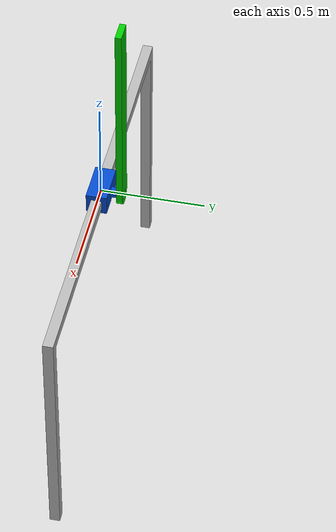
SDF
<?xml version="1.0" ?>
<sdf version='1.7'>
  <model name='cart_pole'>
    <link name='base_footprint'>
      <inertial>
        <pose>0 0 -0.333 0 -0 0</pose>
        <mass>88</mass>
        <inertia>
          <ixx>14.25</ixx>
          <ixy>0</ixy>
          <ixz>0.0245</ixz>
          <iyy>78.78</iyy>
          <iyz>0</iyz>
          <izz>64.57</izz>
        </inertia>
      </inertial>
      <collision name='base_footprint_fixed_joint_lump__base_link_collision'>
        <pose>0 0 0 0 -0 0</pose>
        <geometry>
          <mesh>
            <scale>1 1 1</scale>
            <uri>model://robot_description/meshes/STL/base/stand.stl</uri>
          </mesh>
        </geometry>
        <surface>
          <contact>
            <ode/>
          </contact>
          <friction>
            <ode>
              <mu>0.05</mu>
              <mu2>0.05</mu2>
            </ode>
          </friction>
        </surface>
      </collision>
      <visual name='base_footprint_fixed_joint_lump__base_link_visual'>
        <pose>0 0 0 0 -0 0</pose>
        <geometry>
          <mesh>
            <scale>1 1 1</scale>
            <uri>model://robot_description/meshes/DAE/base/stand.dae</uri>
          </mesh>
        </geometry>
      </visual>
      <self_collide>0</self_collide>
    </link>
    <joint name='cart_joint' type='prismatic'>
      <pose relative_to='base_footprint'>0 0 0 0 -0 0</pose>
      <parent>base_footprint</parent>
      <child>cart_link</child>
      <axis>
        <xyz>1 0 0</xyz>
        <limit>
          <lower>-1</lower>
          <upper>1</upper>
          <effort>30</effort>
          <velocity>10</velocity>
        </limit>
        <dynamics>
          <damping>0.005</damping>
          <friction>0.1</friction>
          <spring_reference>0</spring_reference>
          <spring_stiffness>0</spring_stiffness>
        </dynamics>
      </axis>
    </joint>
    <link name='cart_link'>
      <pose relative_to='cart_joint'>0 0 0 0 -0 0</pose>
      <inertial>
        <pose>0 0 0 0 -0 0</pose>
        <mass>2.7</mass>
        <inertia>
          <ixx>0.005878</ixx>
          <ixy>0</ixy>
          <ixz>0</ixz>
          <iyy>0.01145</iyy>
          <iyz>0</iyz>
          <izz>0.01186</izz>
        </inertia>
      </inertial>
      <collision name='cart_link_collision'>
        <pose>0 0 0 0 -0 0</pose>
        <geometry>
          <mesh>
            <scale>1 1 1</scale>
            <uri>model://robot_description/meshes/STL/cart/cart.stl</uri>
          </mesh>
        </geometry>
        <surface>
          <contact>
            <ode/>
          </contact>
          <friction>
            <ode>
              <mu>1.2</mu>
              <mu2>1.2</mu2>
            </ode>
          </friction>
        </surface>
      </collision>
      <visual name='cart_link_visual'>
        <pose>0 0 0 0 -0 0</pose>
        <geometry>
          <mesh>
            <scale>1 1 1</scale>
            <uri>model://robot_description/meshes/DAE/cart/cart.dae</uri>
          </mesh>
        </geometry>
      </visual>
      <self_collide>0</self_collide>
    </link>
    <joint name='pole_joint' type='revolute'>
      <pose relative_to='cart_link'>0 0.1 0 3.14159 -0 3.14159</pose>
      <parent>cart_link</parent>
      <child>pole_link</child>
      <axis>
        <xyz>0 1 0</xyz>
        <limit>
          <lower>-1.7</lower>
          <upper>1.7</upper>
          <effort>15</effort>
          <velocity>10</velocity>
        </limit>
        <dynamics>
          <damping>1e-05</damping>
          <friction>0.01</friction>
          <spring_reference>0</spring_reference>
          <spring_stiffness>0</spring_stiffness>
        </dynamics>
      </axis>
    </joint>
    <link name='pole_link'>
      <pose relative_to='pole_joint'>0 0 0 0 -0 0</pose>
      <inertial>
        <pose>0 0 -0.489554 0 -0 0</pose>
        <mass>0.85955</mass>
        <inertia>
          <ixx>0.07508</ixx>
          <ixy>0</ixy>
          <ixz>-9.5e-06</ixz>
          <iyy>0.07574</iyy>
          <iyz>0</iyz>
          <izz>0.0007851</izz>
        </inertia>
      </inertial>
      <collision name='pole_link_collision'>
        <pose>0 0 0 0 -0 0</pose>
        <geometry>
          <mesh>
            <scale>1 1 1</scale>
            <uri>model://robot_description/meshes/STL/pole/pole.stl</uri>
          </mesh>
        </geometry>
        <surface>
          <contact>
            <ode/>
          </contact>
          <friction>
            <ode>
              <mu>1.2</mu>
              <mu2>1.2</mu2>
            </ode>
          </friction>
        </surface>
      </collision>
      <visual name='pole_link_visual'>
        <pose>0 0 0 0 -0 0</pose>
        <geometry>
          <mesh>
            <scale>1 1 1</scale>
            <uri>model://robot_description/meshes/DAE/pole/pole.dae</uri>
          </mesh>
        </geometry>
      </visual>
      <self_collide>0</self_collide>
    </link>
    <joint name='tip_joint' type='revolute'>
      <pose relative_to='pole_link'>0 0 -1 0 -0 0</pose>
      <parent>pole_link</parent>
      <child>tip_link</child>
      <axis>
        <xyz>0 1 0</xyz>
        <limit>
          <lower>-1</lower>
          <upper>1</upper>
          <effort>30</effort>
          <velocity>10</velocity>
        </limit>
        <dynamics>
          <damping>0.005</damping>
          <friction>0.1</friction>
          <spring_reference>0</spring_reference>
          <spring_stiffness>0</spring_stiffness>
        </dynamics>
      </axis>
    </joint>
    <link name='tip_link'>
      <pose relative_to='tip_joint'>0 0 0 0 -0 0</pose>
      <inertial>
        <pose>0 0 0 0 -0 0</pose>
        <mass>0.0001</mass>
        <inertia>
          <ixx>1e-08</ixx>
          <ixy>0</ixy>
          <ixz>0</ixz>
          <iyy>1e-08</iyy>
          <iyz>0</iyz>
          <izz>1e-08</izz>
        </inertia>
      </inertial>
      <self_collide>0</self_collide>
    </link>
    <static>0</static>
    <plugin name='gazebo_ros_control' filename='libgazebo_ros_control.so'/>
  </model>
</sdf>
